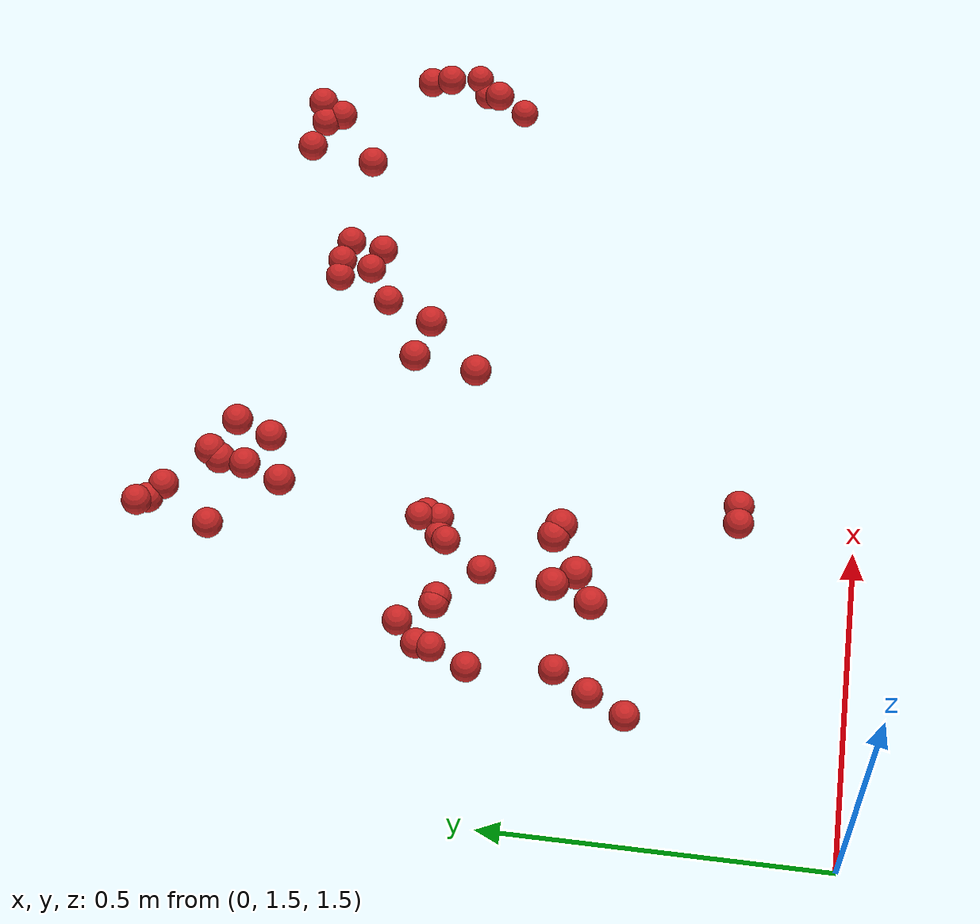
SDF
<sdf version="1.4">
 <model name="fruit_population">
  <static>true</static>
  <link name="fruit_6">
   <pose>0.9286271173134569 2.2731551884942847 1.7716973022270308 0 0 0</pose>
   <collision name="fruit_collision_6"><geometry><sphere><radius>0.022</radius></sphere></geometry></collision>
   <visual name="visual">
    <geometry><sphere><radius>0.022</radius></sphere></geometry>
    <material><script><name>Gazebo/Red</name></script></material>
   </visual>
   <inertial>
    <mass>0.05</mass>
    <inertia>
     <ixx>9.679999999999999e-06</ixx>
     <ixy>0.0</ixy>
     <ixz>0.0</ixz>
     <iyy>9.679999999999999e-06</iyy>
     <iyz>0.0</iyz>
     <izz>9.679999999999999e-06</izz>
    </inertia>
   </inertial>
   <sensor name="fruit_contact_6" type="contact">
    <plugin name="contact_plugin_6" filename="libcontact_plugin.so"/>
    <contact><collision>fruit_collision_6</collision><topic>fruit_contact_topic_6</topic></contact>
   </sensor>
  </link>
  <link name="fruit_22">
   <pose>0.2126457647800521 2.0402052789576874 1.5731759581158526 0 0 0</pose>
   <collision name="fruit_collision_22"><geometry><sphere><radius>0.022</radius></sphere></geometry></collision>
   <visual name="visual">
    <geometry><sphere><radius>0.022</radius></sphere></geometry>
    <material><script><name>Gazebo/Red</name></script></material>
   </visual>
   <inertial>
    <mass>0.05</mass>
    <inertia>
     <ixx>9.679999999999999e-06</ixx>
     <ixy>0.0</ixy>
     <ixz>0.0</ixz>
     <iyy>9.679999999999999e-06</iyy>
     <iyz>0.0</iyz>
     <izz>9.679999999999999e-06</izz>
    </inertia>
   </inertial>
   <sensor name="fruit_contact_22" type="contact">
    <plugin name="contact_plugin_22" filename="libcontact_plugin.so"/>
    <contact><collision>fruit_collision_22</collision><topic>fruit_contact_topic_22</topic></contact>
   </sensor>
  </link>
  <link name="fruit_24">
   <pose>0.3729716433108981 2.319319492841794 1.7647763664933074 0 0 0</pose>
   <collision name="fruit_collision_24"><geometry><sphere><radius>0.022</radius></sphere></geometry></collision>
   <visual name="visual">
    <geometry><sphere><radius>0.022</radius></sphere></geometry>
    <material><script><name>Gazebo/Red</name></script></material>
   </visual>
   <inertial>
    <mass>0.05</mass>
    <inertia>
     <ixx>9.679999999999999e-06</ixx>
     <ixy>0.0</ixy>
     <ixz>0.0</ixz>
     <iyy>9.679999999999999e-06</iyy>
     <iyz>0.0</iyz>
     <izz>9.679999999999999e-06</izz>
    </inertia>
   </inertial>
   <sensor name="fruit_contact_24" type="contact">
    <plugin name="contact_plugin_24" filename="libcontact_plugin.so"/>
    <contact><collision>fruit_collision_24</collision><topic>fruit_contact_topic_24</topic></contact>
   </sensor>
  </link>
  <link name="fruit_37">
   <pose>0.18105494105044112 1.8697597891935536 1.873254710022924 0 0 0</pose>
   <collision name="fruit_collision_37"><geometry><sphere><radius>0.022</radius></sphere></geometry></collision>
   <visual name="visual">
    <geometry><sphere><radius>0.022</radius></sphere></geometry>
    <material><script><name>Gazebo/Red</name></script></material>
   </visual>
   <inertial>
    <mass>0.05</mass>
    <inertia>
     <ixx>9.679999999999999e-06</ixx>
     <ixy>0.0</ixy>
     <ixz>0.0</ixz>
     <iyy>9.679999999999999e-06</iyy>
     <iyz>0.0</iyz>
     <izz>9.679999999999999e-06</izz>
    </inertia>
   </inertial>
   <sensor name="fruit_contact_37" type="contact">
    <plugin name="contact_plugin_37" filename="libcontact_plugin.so"/>
    <contact><collision>fruit_collision_37</collision><topic>fruit_contact_topic_37</topic></contact>
   </sensor>
  </link>
  <link name="fruit_41">
   <pose>0.34616691062136046 2.4255213528481683 1.6662251857479728 0 0 0</pose>
   <collision name="fruit_collision_41"><geometry><sphere><radius>0.022</radius></sphere></geometry></collision>
   <visual name="visual">
    <geometry><sphere><radius>0.022</radius></sphere></geometry>
    <material><script><name>Gazebo/Red</name></script></material>
   </visual>
   <inertial>
    <mass>0.05</mass>
    <inertia>
     <ixx>9.679999999999999e-06</ixx>
     <ixy>0.0</ixy>
     <ixz>0.0</ixz>
     <iyy>9.679999999999999e-06</iyy>
     <iyz>0.0</iyz>
     <izz>9.679999999999999e-06</izz>
    </inertia>
   </inertial>
   <sensor name="fruit_contact_41" type="contact">
    <plugin name="contact_plugin_41" filename="libcontact_plugin.so"/>
    <contact><collision>fruit_collision_41</collision><topic>fruit_contact_topic_41</topic></contact>
   </sensor>
  </link>
  <link name="fruit_51">
   <pose>0.15916652495618383 1.8108935284347418 1.5865598194130546 0 0 0</pose>
   <collision name="fruit_collision_51"><geometry><sphere><radius>0.022</radius></sphere></geometry></collision>
   <visual name="visual">
    <geometry><sphere><radius>0.022</radius></sphere></geometry>
    <material><script><name>Gazebo/Red</name></script></material>
   </visual>
   <inertial>
    <mass>0.05</mass>
    <inertia>
     <ixx>9.679999999999999e-06</ixx>
     <ixy>0.0</ixy>
     <ixz>0.0</ixz>
     <iyy>9.679999999999999e-06</iyy>
     <iyz>0.0</iyz>
     <izz>9.679999999999999e-06</izz>
    </inertia>
   </inertial>
   <sensor name="fruit_contact_51" type="contact">
    <plugin name="contact_plugin_51" filename="libcontact_plugin.so"/>
    <contact><collision>fruit_collision_51</collision><topic>fruit_contact_topic_51</topic></contact>
   </sensor>
  </link>
  <link name="fruit_64">
   <pose>1.2372214454494967 2.079222524804831 1.5345261858143295 0 0 0</pose>
   <collision name="fruit_collision_64"><geometry><sphere><radius>0.022</radius></sphere></geometry></collision>
   <visual name="visual">
    <geometry><sphere><radius>0.022</radius></sphere></geometry>
    <material><script><name>Gazebo/Red</name></script></material>
   </visual>
   <inertial>
    <mass>0.05</mass>
    <inertia>
     <ixx>9.679999999999999e-06</ixx>
     <ixy>0.0</ixy>
     <ixz>0.0</ixz>
     <iyy>9.679999999999999e-06</iyy>
     <iyz>0.0</iyz>
     <izz>9.679999999999999e-06</izz>
    </inertia>
   </inertial>
   <sensor name="fruit_contact_64" type="contact">
    <plugin name="contact_plugin_64" filename="libcontact_plugin.so"/>
    <contact><collision>fruit_collision_64</collision><topic>fruit_contact_topic_64</topic></contact>
   </sensor>
  </link>
  <link name="fruit_77">
   <pose>0.41454153954116324 2.0446920369989563 1.4855597208527829 0 0 0</pose>
   <collision name="fruit_collision_77"><geometry><sphere><radius>0.022</radius></sphere></geometry></collision>
   <visual name="visual">
    <geometry><sphere><radius>0.022</radius></sphere></geometry>
    <material><script><name>Gazebo/Red</name></script></material>
   </visual>
   <inertial>
    <mass>0.05</mass>
    <inertia>
     <ixx>9.679999999999999e-06</ixx>
     <ixy>0.0</ixy>
     <ixz>0.0</ixz>
     <iyy>9.679999999999999e-06</iyy>
     <iyz>0.0</iyz>
     <izz>9.679999999999999e-06</izz>
    </inertia>
   </inertial>
   <sensor name="fruit_contact_77" type="contact">
    <plugin name="contact_plugin_77" filename="libcontact_plugin.so"/>
    <contact><collision>fruit_collision_77</collision><topic>fruit_contact_topic_77</topic></contact>
   </sensor>
  </link>
  <link name="fruit_92">
   <pose>1.0710023496162049 2.099839104788794 1.7794484445738763 0 0 0</pose>
   <collision name="fruit_collision_92"><geometry><sphere><radius>0.022</radius></sphere></geometry></collision>
   <visual name="visual">
    <geometry><sphere><radius>0.022</radius></sphere></geometry>
    <material><script><name>Gazebo/Red</name></script></material>
   </visual>
   <inertial>
    <mass>0.05</mass>
    <inertia>
     <ixx>9.679999999999999e-06</ixx>
     <ixy>0.0</ixy>
     <ixz>0.0</ixz>
     <iyy>9.679999999999999e-06</iyy>
     <iyz>0.0</iyz>
     <izz>9.679999999999999e-06</izz>
    </inertia>
   </inertial>
   <sensor name="fruit_contact_92" type="contact">
    <plugin name="contact_plugin_92" filename="libcontact_plugin.so"/>
    <contact><collision>fruit_collision_92</collision><topic>fruit_contact_topic_92</topic></contact>
   </sensor>
  </link>
  <link name="fruit_140">
   <pose>0.5604169913502984 2.0693620066215637 1.80310417239114 0 0 0</pose>
   <collision name="fruit_collision_140"><geometry><sphere><radius>0.022</radius></sphere></geometry></collision>
   <visual name="visual">
    <geometry><sphere><radius>0.022</radius></sphere></geometry>
    <material><script><name>Gazebo/Red</name></script></material>
   </visual>
   <inertial>
    <mass>0.05</mass>
    <inertia>
     <ixx>9.679999999999999e-06</ixx>
     <ixy>0.0</ixy>
     <ixz>0.0</ixz>
     <iyy>9.679999999999999e-06</iyy>
     <iyz>0.0</iyz>
     <izz>9.679999999999999e-06</izz>
    </inertia>
   </inertial>
   <sensor name="fruit_contact_140" type="contact">
    <plugin name="contact_plugin_140" filename="libcontact_plugin.so"/>
    <contact><collision>fruit_collision_140</collision><topic>fruit_contact_topic_140</topic></contact>
   </sensor>
  </link>
  <link name="fruit_144">
   <pose>0.7597470956673927 2.228940727399983 1.6582708883677995 0 0 0</pose>
   <collision name="fruit_collision_144"><geometry><sphere><radius>0.022</radius></sphere></geometry></collision>
   <visual name="visual">
    <geometry><sphere><radius>0.022</radius></sphere></geometry>
    <material><script><name>Gazebo/Red</name></script></material>
   </visual>
   <inertial>
    <mass>0.05</mass>
    <inertia>
     <ixx>9.679999999999999e-06</ixx>
     <ixy>0.0</ixy>
     <ixz>0.0</ixz>
     <iyy>9.679999999999999e-06</iyy>
     <iyz>0.0</iyz>
     <izz>9.679999999999999e-06</izz>
    </inertia>
   </inertial>
   <sensor name="fruit_contact_144" type="contact">
    <plugin name="contact_plugin_144" filename="libcontact_plugin.so"/>
    <contact><collision>fruit_collision_144</collision><topic>fruit_contact_topic_144</topic></contact>
   </sensor>
  </link>
  <link name="fruit_187">
   <pose>1.0975690996132863 2.2067646426979888 1.7634826426656218 0 0 0</pose>
   <collision name="fruit_collision_187"><geometry><sphere><radius>0.022</radius></sphere></geometry></collision>
   <visual name="visual">
    <geometry><sphere><radius>0.022</radius></sphere></geometry>
    <material><script><name>Gazebo/Red</name></script></material>
   </visual>
   <inertial>
    <mass>0.05</mass>
    <inertia>
     <ixx>9.679999999999999e-06</ixx>
     <ixy>0.0</ixy>
     <ixz>0.0</ixz>
     <iyy>9.679999999999999e-06</iyy>
     <iyz>0.0</iyz>
     <izz>9.679999999999999e-06</izz>
    </inertia>
   </inertial>
   <sensor name="fruit_contact_187" type="contact">
    <plugin name="contact_plugin_187" filename="libcontact_plugin.so"/>
    <contact><collision>fruit_collision_187</collision><topic>fruit_contact_topic_187</topic></contact>
   </sensor>
  </link>
  <link name="fruit_191">
   <pose>1.0080222966381955 2.35763221755503 1.7565972930393607 0 0 0</pose>
   <collision name="fruit_collision_191"><geometry><sphere><radius>0.022</radius></sphere></geometry></collision>
   <visual name="visual">
    <geometry><sphere><radius>0.022</radius></sphere></geometry>
    <material><script><name>Gazebo/Red</name></script></material>
   </visual>
   <inertial>
    <mass>0.05</mass>
    <inertia>
     <ixx>9.679999999999999e-06</ixx>
     <ixy>0.0</ixy>
     <ixz>0.0</ixz>
     <iyy>9.679999999999999e-06</iyy>
     <iyz>0.0</iyz>
     <izz>9.679999999999999e-06</izz>
    </inertia>
   </inertial>
   <sensor name="fruit_contact_191" type="contact">
    <plugin name="contact_plugin_191" filename="libcontact_plugin.so"/>
    <contact><collision>fruit_collision_191</collision><topic>fruit_contact_topic_191</topic></contact>
   </sensor>
  </link>
  <link name="fruit_222">
   <pose>1.0930317047623366 2.176346932051886 1.7793904427415657 0 0 0</pose>
   <collision name="fruit_collision_222"><geometry><sphere><radius>0.022</radius></sphere></geometry></collision>
   <visual name="visual">
    <geometry><sphere><radius>0.022</radius></sphere></geometry>
    <material><script><name>Gazebo/Red</name></script></material>
   </visual>
   <inertial>
    <mass>0.05</mass>
    <inertia>
     <ixx>9.679999999999999e-06</ixx>
     <ixy>0.0</ixy>
     <ixz>0.0</ixz>
     <iyy>9.679999999999999e-06</iyy>
     <iyz>0.0</iyz>
     <izz>9.679999999999999e-06</izz>
    </inertia>
   </inertial>
   <sensor name="fruit_contact_222" type="contact">
    <plugin name="contact_plugin_222" filename="libcontact_plugin.so"/>
    <contact><collision>fruit_collision_222</collision><topic>fruit_contact_topic_222</topic></contact>
   </sensor>
  </link>
  <link name="fruit_239">
   <pose>0.3705423444139603 2.532829878314412 1.6660277850355836 0 0 0</pose>
   <collision name="fruit_collision_239"><geometry><sphere><radius>0.022</radius></sphere></geometry></collision>
   <visual name="visual">
    <geometry><sphere><radius>0.022</radius></sphere></geometry>
    <material><script><name>Gazebo/Red</name></script></material>
   </visual>
   <inertial>
    <mass>0.05</mass>
    <inertia>
     <ixx>9.679999999999999e-06</ixx>
     <ixy>0.0</ixy>
     <ixz>0.0</ixz>
     <iyy>9.679999999999999e-06</iyy>
     <iyz>0.0</iyz>
     <izz>9.679999999999999e-06</izz>
    </inertia>
   </inertial>
   <sensor name="fruit_contact_239" type="contact">
    <plugin name="contact_plugin_239" filename="libcontact_plugin.so"/>
    <contact><collision>fruit_collision_239</collision><topic>fruit_contact_topic_239</topic></contact>
   </sensor>
  </link>
  <link name="fruit_251">
   <pose>0.43851870704911994 1.6797414119379956 1.6669475574767638 0 0 0</pose>
   <collision name="fruit_collision_251"><geometry><sphere><radius>0.022</radius></sphere></geometry></collision>
   <visual name="visual">
    <geometry><sphere><radius>0.022</radius></sphere></geometry>
    <material><script><name>Gazebo/Red</name></script></material>
   </visual>
   <inertial>
    <mass>0.05</mass>
    <inertia>
     <ixx>9.679999999999999e-06</ixx>
     <ixy>0.0</ixy>
     <ixz>0.0</ixz>
     <iyy>9.679999999999999e-06</iyy>
     <iyz>0.0</iyz>
     <izz>9.679999999999999e-06</izz>
    </inertia>
   </inertial>
   <sensor name="fruit_contact_251" type="contact">
    <plugin name="contact_plugin_251" filename="libcontact_plugin.so"/>
    <contact><collision>fruit_collision_251</collision><topic>fruit_contact_topic_251</topic></contact>
   </sensor>
  </link>
  <link name="fruit_254">
   <pose>0.3828547564513202 2.5203369219246277 1.6534806606618628 0 0 0</pose>
   <collision name="fruit_collision_254"><geometry><sphere><radius>0.022</radius></sphere></geometry></collision>
   <visual name="visual">
    <geometry><sphere><radius>0.022</radius></sphere></geometry>
    <material><script><name>Gazebo/Red</name></script></material>
   </visual>
   <inertial>
    <mass>0.05</mass>
    <inertia>
     <ixx>9.679999999999999e-06</ixx>
     <ixy>0.0</ixy>
     <ixz>0.0</ixz>
     <iyy>9.679999999999999e-06</iyy>
     <iyz>0.0</iyz>
     <izz>9.679999999999999e-06</izz>
    </inertia>
   </inertial>
   <sensor name="fruit_contact_254" type="contact">
    <plugin name="contact_plugin_254" filename="libcontact_plugin.so"/>
    <contact><collision>fruit_collision_254</collision><topic>fruit_contact_topic_254</topic></contact>
   </sensor>
  </link>
  <link name="fruit_275">
   <pose>0.40687078191338955 2.4108697090877076 1.747769291683837 0 0 0</pose>
   <collision name="fruit_collision_275"><geometry><sphere><radius>0.022</radius></sphere></geometry></collision>
   <visual name="visual">
    <geometry><sphere><radius>0.022</radius></sphere></geometry>
    <material><script><name>Gazebo/Red</name></script></material>
   </visual>
   <inertial>
    <mass>0.05</mass>
    <inertia>
     <ixx>9.679999999999999e-06</ixx>
     <ixy>0.0</ixy>
     <ixz>0.0</ixz>
     <iyy>9.679999999999999e-06</iyy>
     <iyz>0.0</iyz>
     <izz>9.679999999999999e-06</izz>
    </inertia>
   </inertial>
   <sensor name="fruit_contact_275" type="contact">
    <plugin name="contact_plugin_275" filename="libcontact_plugin.so"/>
    <contact><collision>fruit_collision_275</collision><topic>fruit_contact_topic_275</topic></contact>
   </sensor>
  </link>
  <link name="fruit_295">
   <pose>0.5849100100280233 2.1596716759296153 1.7865010461987834 0 0 0</pose>
   <collision name="fruit_collision_295"><geometry><sphere><radius>0.022</radius></sphere></geometry></collision>
   <visual name="visual">
    <geometry><sphere><radius>0.022</radius></sphere></geometry>
    <material><script><name>Gazebo/Red</name></script></material>
   </visual>
   <inertial>
    <mass>0.05</mass>
    <inertia>
     <ixx>9.679999999999999e-06</ixx>
     <ixy>0.0</ixy>
     <ixz>0.0</ixz>
     <iyy>9.679999999999999e-06</iyy>
     <iyz>0.0</iyz>
     <izz>9.679999999999999e-06</izz>
    </inertia>
   </inertial>
   <sensor name="fruit_contact_295" type="contact">
    <plugin name="contact_plugin_295" filename="libcontact_plugin.so"/>
    <contact><collision>fruit_collision_295</collision><topic>fruit_contact_topic_295</topic></contact>
   </sensor>
  </link>
  <link name="fruit_305">
   <pose>0.2906460262690709 1.9200071591452244 1.872805201730352 0 0 0</pose>
   <collision name="fruit_collision_305"><geometry><sphere><radius>0.022</radius></sphere></geometry></collision>
   <visual name="visual">
    <geometry><sphere><radius>0.022</radius></sphere></geometry>
    <material><script><name>Gazebo/Red</name></script></material>
   </visual>
   <inertial>
    <mass>0.05</mass>
    <inertia>
     <ixx>9.679999999999999e-06</ixx>
     <ixy>0.0</ixy>
     <ixz>0.0</ixz>
     <iyy>9.679999999999999e-06</iyy>
     <iyz>0.0</iyz>
     <izz>9.679999999999999e-06</izz>
    </inertia>
   </inertial>
   <sensor name="fruit_contact_305" type="contact">
    <plugin name="contact_plugin_305" filename="libcontact_plugin.so"/>
    <contact><collision>fruit_collision_305</collision><topic>fruit_contact_topic_305</topic></contact>
   </sensor>
  </link>
  <link name="fruit_319">
   <pose>1.020992120738359 2.3346417149626313 1.758769017089317 0 0 0</pose>
   <collision name="fruit_collision_319"><geometry><sphere><radius>0.022</radius></sphere></geometry></collision>
   <visual name="visual">
    <geometry><sphere><radius>0.022</radius></sphere></geometry>
    <material><script><name>Gazebo/Red</name></script></material>
   </visual>
   <inertial>
    <mass>0.05</mass>
    <inertia>
     <ixx>9.679999999999999e-06</ixx>
     <ixy>0.0</ixy>
     <ixz>0.0</ixz>
     <iyy>9.679999999999999e-06</iyy>
     <iyz>0.0</iyz>
     <izz>9.679999999999999e-06</izz>
    </inertia>
   </inertial>
   <sensor name="fruit_contact_319" type="contact">
    <plugin name="contact_plugin_319" filename="libcontact_plugin.so"/>
    <contact><collision>fruit_collision_319</collision><topic>fruit_contact_topic_319</topic></contact>
   </sensor>
  </link>
  <link name="fruit_332">
   <pose>0.27434474007666626 2.146942440487473 1.5710921663481103 0 0 0</pose>
   <collision name="fruit_collision_332"><geometry><sphere><radius>0.022</radius></sphere></geometry></collision>
   <visual name="visual">
    <geometry><sphere><radius>0.022</radius></sphere></geometry>
    <material><script><name>Gazebo/Red</name></script></material>
   </visual>
   <inertial>
    <mass>0.05</mass>
    <inertia>
     <ixx>9.679999999999999e-06</ixx>
     <ixy>0.0</ixy>
     <ixz>0.0</ixz>
     <iyy>9.679999999999999e-06</iyy>
     <iyz>0.0</iyz>
     <izz>9.679999999999999e-06</izz>
    </inertia>
   </inertial>
   <sensor name="fruit_contact_332" type="contact">
    <plugin name="contact_plugin_332" filename="libcontact_plugin.so"/>
    <contact><collision>fruit_collision_332</collision><topic>fruit_contact_topic_332</topic></contact>
   </sensor>
  </link>
  <link name="fruit_355">
   <pose>0.4731632302541494 2.1163147826311146 1.4687762942453066 0 0 0</pose>
   <collision name="fruit_collision_355"><geometry><sphere><radius>0.022</radius></sphere></geometry></collision>
   <visual name="visual">
    <geometry><sphere><radius>0.022</radius></sphere></geometry>
    <material><script><name>Gazebo/Red</name></script></material>
   </visual>
   <inertial>
    <mass>0.05</mass>
    <inertia>
     <ixx>9.679999999999999e-06</ixx>
     <ixy>0.0</ixy>
     <ixz>0.0</ixz>
     <iyy>9.679999999999999e-06</iyy>
     <iyz>0.0</iyz>
     <izz>9.679999999999999e-06</izz>
    </inertia>
   </inertial>
   <sensor name="fruit_contact_355" type="contact">
    <plugin name="contact_plugin_355" filename="libcontact_plugin.so"/>
    <contact><collision>fruit_collision_355</collision><topic>fruit_contact_topic_355</topic></contact>
   </sensor>
  </link>
  <link name="fruit_384">
   <pose>0.40015497740405936 2.374065873379104 1.7523514993142801 0 0 0</pose>
   <collision name="fruit_collision_384"><geometry><sphere><radius>0.022</radius></sphere></geometry></collision>
   <visual name="visual">
    <geometry><sphere><radius>0.022</radius></sphere></geometry>
    <material><script><name>Gazebo/Red</name></script></material>
   </visual>
   <inertial>
    <mass>0.05</mass>
    <inertia>
     <ixx>9.679999999999999e-06</ixx>
     <ixy>0.0</ixy>
     <ixz>0.0</ixz>
     <iyy>9.679999999999999e-06</iyy>
     <iyz>0.0</iyz>
     <izz>9.679999999999999e-06</izz>
    </inertia>
   </inertial>
   <sensor name="fruit_contact_384" type="contact">
    <plugin name="contact_plugin_384" filename="libcontact_plugin.so"/>
    <contact><collision>fruit_collision_384</collision><topic>fruit_contact_topic_384</topic></contact>
   </sensor>
  </link>
  <link name="fruit_406">
   <pose>0.18915486752613198 1.8654068260970285 1.5826288856259545 0 0 0</pose>
   <collision name="fruit_collision_406"><geometry><sphere><radius>0.022</radius></sphere></geometry></collision>
   <visual name="visual">
    <geometry><sphere><radius>0.022</radius></sphere></geometry>
    <material><script><name>Gazebo/Red</name></script></material>
   </visual>
   <inertial>
    <mass>0.05</mass>
    <inertia>
     <ixx>9.679999999999999e-06</ixx>
     <ixy>0.0</ixy>
     <ixz>0.0</ixz>
     <iyy>9.679999999999999e-06</iyy>
     <iyz>0.0</iyz>
     <izz>9.679999999999999e-06</izz>
    </inertia>
   </inertial>
   <sensor name="fruit_contact_406" type="contact">
    <plugin name="contact_plugin_406" filename="libcontact_plugin.so"/>
    <contact><collision>fruit_collision_406</collision><topic>fruit_contact_topic_406</topic></contact>
   </sensor>
  </link>
  <link name="fruit_477">
   <pose>0.2037296065783055 1.9218098099742973 1.870531206124399 0 0 0</pose>
   <collision name="fruit_collision_477"><geometry><sphere><radius>0.022</radius></sphere></geometry></collision>
   <visual name="visual">
    <geometry><sphere><radius>0.022</radius></sphere></geometry>
    <material><script><name>Gazebo/Red</name></script></material>
   </visual>
   <inertial>
    <mass>0.05</mass>
    <inertia>
     <ixx>9.679999999999999e-06</ixx>
     <ixy>0.0</ixy>
     <ixz>0.0</ixz>
     <iyy>9.679999999999999e-06</iyy>
     <iyz>0.0</iyz>
     <izz>9.679999999999999e-06</izz>
    </inertia>
   </inertial>
   <sensor name="fruit_contact_477" type="contact">
    <plugin name="contact_plugin_477" filename="libcontact_plugin.so"/>
    <contact><collision>fruit_collision_477</collision><topic>fruit_contact_topic_477</topic></contact>
   </sensor>
  </link>
  <link name="fruit_500">
   <pose>1.2825781043513076 2.145381176047593 1.5151192990448774 0 0 0</pose>
   <collision name="fruit_collision_500"><geometry><sphere><radius>0.022</radius></sphere></geometry></collision>
   <visual name="visual">
    <geometry><sphere><radius>0.022</radius></sphere></geometry>
    <material><script><name>Gazebo/Red</name></script></material>
   </visual>
   <inertial>
    <mass>0.05</mass>
    <inertia>
     <ixx>9.679999999999999e-06</ixx>
     <ixy>0.0</ixy>
     <ixz>0.0</ixz>
     <iyy>9.679999999999999e-06</iyy>
     <iyz>0.0</iyz>
     <izz>9.679999999999999e-06</izz>
    </inertia>
   </inertial>
   <sensor name="fruit_contact_500" type="contact">
    <plugin name="contact_plugin_500" filename="libcontact_plugin.so"/>
    <contact><collision>fruit_collision_500</collision><topic>fruit_contact_topic_500</topic></contact>
   </sensor>
  </link>
  <link name="fruit_506">
   <pose>0.22068799400985956 1.9165911673902805 1.5797477715686385 0 0 0</pose>
   <collision name="fruit_collision_506"><geometry><sphere><radius>0.022</radius></sphere></geometry></collision>
   <visual name="visual">
    <geometry><sphere><radius>0.022</radius></sphere></geometry>
    <material><script><name>Gazebo/Red</name></script></material>
   </visual>
   <inertial>
    <mass>0.05</mass>
    <inertia>
     <ixx>9.679999999999999e-06</ixx>
     <ixy>0.0</ixy>
     <ixz>0.0</ixz>
     <iyy>9.679999999999999e-06</iyy>
     <iyz>0.0</iyz>
     <izz>9.679999999999999e-06</izz>
    </inertia>
   </inertial>
   <sensor name="fruit_contact_506" type="contact">
    <plugin name="contact_plugin_506" filename="libcontact_plugin.so"/>
    <contact><collision>fruit_collision_506</collision><topic>fruit_contact_topic_506</topic></contact>
   </sensor>
  </link>
  <link name="fruit_510">
   <pose>0.8143532822385943 2.26305887311379 1.6577533732067278 0 0 0</pose>
   <collision name="fruit_collision_510"><geometry><sphere><radius>0.022</radius></sphere></geometry></collision>
   <visual name="visual">
    <geometry><sphere><radius>0.022</radius></sphere></geometry>
    <material><script><name>Gazebo/Red</name></script></material>
   </visual>
   <inertial>
    <mass>0.05</mass>
    <inertia>
     <ixx>9.679999999999999e-06</ixx>
     <ixy>0.0</ixy>
     <ixz>0.0</ixz>
     <iyy>9.679999999999999e-06</iyy>
     <iyz>0.0</iyz>
     <izz>9.679999999999999e-06</izz>
    </inertia>
   </inertial>
   <sensor name="fruit_contact_510" type="contact">
    <plugin name="contact_plugin_510" filename="libcontact_plugin.so"/>
    <contact><collision>fruit_collision_510</collision><topic>fruit_contact_topic_510</topic></contact>
   </sensor>
  </link>
  <link name="fruit_512">
   <pose>0.5104072362681017 2.1396476697106093 1.4697013164951989 0 0 0</pose>
   <collision name="fruit_collision_512"><geometry><sphere><radius>0.022</radius></sphere></geometry></collision>
   <visual name="visual">
    <geometry><sphere><radius>0.022</radius></sphere></geometry>
    <material><script><name>Gazebo/Red</name></script></material>
   </visual>
   <inertial>
    <mass>0.05</mass>
    <inertia>
     <ixx>9.679999999999999e-06</ixx>
     <ixy>0.0</ixy>
     <ixz>0.0</ixz>
     <iyy>9.679999999999999e-06</iyy>
     <iyz>0.0</iyz>
     <izz>9.679999999999999e-06</izz>
    </inertia>
   </inertial>
   <sensor name="fruit_contact_512" type="contact">
    <plugin name="contact_plugin_512" filename="libcontact_plugin.so"/>
    <contact><collision>fruit_collision_512</collision><topic>fruit_contact_topic_512</topic></contact>
   </sensor>
  </link>
  <link name="fruit_530">
   <pose>1.3014351101905821 2.160973151834373 1.5325350712494894 0 0 0</pose>
   <collision name="fruit_collision_530"><geometry><sphere><radius>0.022</radius></sphere></geometry></collision>
   <visual name="visual">
    <geometry><sphere><radius>0.022</radius></sphere></geometry>
    <material><script><name>Gazebo/Red</name></script></material>
   </visual>
   <inertial>
    <mass>0.05</mass>
    <inertia>
     <ixx>9.679999999999999e-06</ixx>
     <ixy>0.0</ixy>
     <ixz>0.0</ixz>
     <iyy>9.679999999999999e-06</iyy>
     <iyz>0.0</iyz>
     <izz>9.679999999999999e-06</izz>
    </inertia>
   </inertial>
   <sensor name="fruit_contact_530" type="contact">
    <plugin name="contact_plugin_530" filename="libcontact_plugin.so"/>
    <contact><collision>fruit_collision_530</collision><topic>fruit_contact_topic_530</topic></contact>
   </sensor>
  </link>
  <link name="fruit_537">
   <pose>0.8031288174601846 2.3099669219110197 1.6452295664567291 0 0 0</pose>
   <collision name="fruit_collision_537"><geometry><sphere><radius>0.022</radius></sphere></geometry></collision>
   <visual name="visual">
    <geometry><sphere><radius>0.022</radius></sphere></geometry>
    <material><script><name>Gazebo/Red</name></script></material>
   </visual>
   <inertial>
    <mass>0.05</mass>
    <inertia>
     <ixx>9.679999999999999e-06</ixx>
     <ixy>0.0</ixy>
     <ixz>0.0</ixz>
     <iyy>9.679999999999999e-06</iyy>
     <iyz>0.0</iyz>
     <izz>9.679999999999999e-06</izz>
    </inertia>
   </inertial>
   <sensor name="fruit_contact_537" type="contact">
    <plugin name="contact_plugin_537" filename="libcontact_plugin.so"/>
    <contact><collision>fruit_collision_537</collision><topic>fruit_contact_topic_537</topic></contact>
   </sensor>
  </link>
  <link name="fruit_587">
   <pose>0.4509643662739048 2.3460998811638665 1.7490744286556459 0 0 0</pose>
   <collision name="fruit_collision_587"><geometry><sphere><radius>0.022</radius></sphere></geometry></collision>
   <visual name="visual">
    <geometry><sphere><radius>0.022</radius></sphere></geometry>
    <material><script><name>Gazebo/Red</name></script></material>
   </visual>
   <inertial>
    <mass>0.05</mass>
    <inertia>
     <ixx>9.679999999999999e-06</ixx>
     <ixy>0.0</ixy>
     <ixz>0.0</ixz>
     <iyy>9.679999999999999e-06</iyy>
     <iyz>0.0</iyz>
     <izz>9.679999999999999e-06</izz>
    </inertia>
   </inertial>
   <sensor name="fruit_contact_587" type="contact">
    <plugin name="contact_plugin_587" filename="libcontact_plugin.so"/>
    <contact><collision>fruit_collision_587</collision><topic>fruit_contact_topic_587</topic></contact>
   </sensor>
  </link>
  <link name="fruit_615">
   <pose>0.8647788748125541 2.301467264405912 1.6516727977786159 0 0 0</pose>
   <collision name="fruit_collision_615"><geometry><sphere><radius>0.022</radius></sphere></geometry></collision>
   <visual name="visual">
    <geometry><sphere><radius>0.022</radius></sphere></geometry>
    <material><script><name>Gazebo/Red</name></script></material>
   </visual>
   <inertial>
    <mass>0.05</mass>
    <inertia>
     <ixx>9.679999999999999e-06</ixx>
     <ixy>0.0</ixy>
     <ixz>0.0</ixz>
     <iyy>9.679999999999999e-06</iyy>
     <iyz>0.0</iyz>
     <izz>9.679999999999999e-06</izz>
    </inertia>
   </inertial>
   <sensor name="fruit_contact_615" type="contact">
    <plugin name="contact_plugin_615" filename="libcontact_plugin.so"/>
    <contact><collision>fruit_collision_615</collision><topic>fruit_contact_topic_615</topic></contact>
   </sensor>
  </link>
  <link name="fruit_624">
   <pose>0.4679798491711361 1.6807746356956568 1.664766876376536 0 0 0</pose>
   <collision name="fruit_collision_624"><geometry><sphere><radius>0.022</radius></sphere></geometry></collision>
   <visual name="visual">
    <geometry><sphere><radius>0.022</radius></sphere></geometry>
    <material><script><name>Gazebo/Red</name></script></material>
   </visual>
   <inertial>
    <mass>0.05</mass>
    <inertia>
     <ixx>9.679999999999999e-06</ixx>
     <ixy>0.0</ixy>
     <ixz>0.0</ixz>
     <iyy>9.679999999999999e-06</iyy>
     <iyz>0.0</iyz>
     <izz>9.679999999999999e-06</izz>
    </inertia>
   </inertial>
   <sensor name="fruit_contact_624" type="contact">
    <plugin name="contact_plugin_624" filename="libcontact_plugin.so"/>
    <contact><collision>fruit_collision_624</collision><topic>fruit_contact_topic_624</topic></contact>
   </sensor>
  </link>
  <link name="fruit_631">
   <pose>0.9563101566317597 2.369663365948371 1.7600980665548824 0 0 0</pose>
   <collision name="fruit_collision_631"><geometry><sphere><radius>0.022</radius></sphere></geometry></collision>
   <visual name="visual">
    <geometry><sphere><radius>0.022</radius></sphere></geometry>
    <material><script><name>Gazebo/Red</name></script></material>
   </visual>
   <inertial>
    <mass>0.05</mass>
    <inertia>
     <ixx>9.679999999999999e-06</ixx>
     <ixy>0.0</ixy>
     <ixz>0.0</ixz>
     <iyy>9.679999999999999e-06</iyy>
     <iyz>0.0</iyz>
     <izz>9.679999999999999e-06</izz>
    </inertia>
   </inertial>
   <sensor name="fruit_contact_631" type="contact">
    <plugin name="contact_plugin_631" filename="libcontact_plugin.so"/>
    <contact><collision>fruit_collision_631</collision><topic>fruit_contact_topic_631</topic></contact>
   </sensor>
  </link>
  <link name="fruit_636">
   <pose>0.497288155751392 2.1490195660100238 1.479896280307714 0 0 0</pose>
   <collision name="fruit_collision_636"><geometry><sphere><radius>0.022</radius></sphere></geometry></collision>
   <visual name="visual">
    <geometry><sphere><radius>0.022</radius></sphere></geometry>
    <material><script><name>Gazebo/Red</name></script></material>
   </visual>
   <inertial>
    <mass>0.05</mass>
    <inertia>
     <ixx>9.679999999999999e-06</ixx>
     <ixy>0.0</ixy>
     <ixz>0.0</ixz>
     <iyy>9.679999999999999e-06</iyy>
     <iyz>0.0</iyz>
     <izz>9.679999999999999e-06</izz>
    </inertia>
   </inertial>
   <sensor name="fruit_contact_636" type="contact">
    <plugin name="contact_plugin_636" filename="libcontact_plugin.so"/>
    <contact><collision>fruit_collision_636</collision><topic>fruit_contact_topic_636</topic></contact>
   </sensor>
  </link>
  <link name="fruit_638">
   <pose>0.27436011676382877 1.9278007335879144 1.870865729828995 0 0 0</pose>
   <collision name="fruit_collision_638"><geometry><sphere><radius>0.022</radius></sphere></geometry></collision>
   <visual name="visual">
    <geometry><sphere><radius>0.022</radius></sphere></geometry>
    <material><script><name>Gazebo/Red</name></script></material>
   </visual>
   <inertial>
    <mass>0.05</mass>
    <inertia>
     <ixx>9.679999999999999e-06</ixx>
     <ixy>0.0</ixy>
     <ixz>0.0</ixz>
     <iyy>9.679999999999999e-06</iyy>
     <iyz>0.0</iyz>
     <izz>9.679999999999999e-06</izz>
    </inertia>
   </inertial>
   <sensor name="fruit_contact_638" type="contact">
    <plugin name="contact_plugin_638" filename="libcontact_plugin.so"/>
    <contact><collision>fruit_collision_638</collision><topic>fruit_contact_topic_638</topic></contact>
   </sensor>
  </link>
  <link name="fruit_640">
   <pose>0.6436070602880152 2.1444767960410602 1.7891020896074779 0 0 0</pose>
   <collision name="fruit_collision_640"><geometry><sphere><radius>0.022</radius></sphere></geometry></collision>
   <visual name="visual">
    <geometry><sphere><radius>0.022</radius></sphere></geometry>
    <material><script><name>Gazebo/Red</name></script></material>
   </visual>
   <inertial>
    <mass>0.05</mass>
    <inertia>
     <ixx>9.679999999999999e-06</ixx>
     <ixy>0.0</ixy>
     <ixz>0.0</ixz>
     <iyy>9.679999999999999e-06</iyy>
     <iyz>0.0</iyz>
     <izz>9.679999999999999e-06</izz>
    </inertia>
   </inertial>
   <sensor name="fruit_contact_640" type="contact">
    <plugin name="contact_plugin_640" filename="libcontact_plugin.so"/>
    <contact><collision>fruit_collision_640</collision><topic>fruit_contact_topic_640</topic></contact>
   </sensor>
  </link>
  <link name="fruit_650">
   <pose>0.24574756246943236 2.116658902217522 1.5624561838741051 0 0 0</pose>
   <collision name="fruit_collision_650"><geometry><sphere><radius>0.022</radius></sphere></geometry></collision>
   <visual name="visual">
    <geometry><sphere><radius>0.022</radius></sphere></geometry>
    <material><script><name>Gazebo/Red</name></script></material>
   </visual>
   <inertial>
    <mass>0.05</mass>
    <inertia>
     <ixx>9.679999999999999e-06</ixx>
     <ixy>0.0</ixy>
     <ixz>0.0</ixz>
     <iyy>9.679999999999999e-06</iyy>
     <iyz>0.0</iyz>
     <izz>9.679999999999999e-06</izz>
    </inertia>
   </inertial>
   <sensor name="fruit_contact_650" type="contact">
    <plugin name="contact_plugin_650" filename="libcontact_plugin.so"/>
    <contact><collision>fruit_collision_650</collision><topic>fruit_contact_topic_650</topic></contact>
   </sensor>
  </link>
  <link name="fruit_654">
   <pose>0.5023775701658235 2.119701323611858 1.471967957467354 0 0 0</pose>
   <collision name="fruit_collision_654"><geometry><sphere><radius>0.022</radius></sphere></geometry></collision>
   <visual name="visual">
    <geometry><sphere><radius>0.022</radius></sphere></geometry>
    <material><script><name>Gazebo/Red</name></script></material>
   </visual>
   <inertial>
    <mass>0.05</mass>
    <inertia>
     <ixx>9.679999999999999e-06</ixx>
     <ixy>0.0</ixy>
     <ixz>0.0</ixz>
     <iyy>9.679999999999999e-06</iyy>
     <iyz>0.0</iyz>
     <izz>9.679999999999999e-06</izz>
    </inertia>
   </inertial>
   <sensor name="fruit_contact_654" type="contact">
    <plugin name="contact_plugin_654" filename="libcontact_plugin.so"/>
    <contact><collision>fruit_collision_654</collision><topic>fruit_contact_topic_654</topic></contact>
   </sensor>
  </link>
  <link name="fruit_671">
   <pose>1.0345259238938114 2.3658877930797555 1.7684063005705177 0 0 0</pose>
   <collision name="fruit_collision_671"><geometry><sphere><radius>0.022</radius></sphere></geometry></collision>
   <visual name="visual">
    <geometry><sphere><radius>0.022</radius></sphere></geometry>
    <material><script><name>Gazebo/Red</name></script></material>
   </visual>
   <inertial>
    <mass>0.05</mass>
    <inertia>
     <ixx>9.679999999999999e-06</ixx>
     <ixy>0.0</ixy>
     <ixz>0.0</ixz>
     <iyy>9.679999999999999e-06</iyy>
     <iyz>0.0</iyz>
     <izz>9.679999999999999e-06</izz>
    </inertia>
   </inertial>
   <sensor name="fruit_contact_671" type="contact">
    <plugin name="contact_plugin_671" filename="libcontact_plugin.so"/>
    <contact><collision>fruit_collision_671</collision><topic>fruit_contact_topic_671</topic></contact>
   </sensor>
  </link>
  <link name="fruit_683">
   <pose>0.4151211023178884 2.4250460747505027 1.7549111482394089 0 0 0</pose>
   <collision name="fruit_collision_683"><geometry><sphere><radius>0.022</radius></sphere></geometry></collision>
   <visual name="visual">
    <geometry><sphere><radius>0.022</radius></sphere></geometry>
    <material><script><name>Gazebo/Red</name></script></material>
   </visual>
   <inertial>
    <mass>0.05</mass>
    <inertia>
     <ixx>9.679999999999999e-06</ixx>
     <ixy>0.0</ixy>
     <ixz>0.0</ixz>
     <iyy>9.679999999999999e-06</iyy>
     <iyz>0.0</iyz>
     <izz>9.679999999999999e-06</izz>
    </inertia>
   </inertial>
   <sensor name="fruit_contact_683" type="contact">
    <plugin name="contact_plugin_683" filename="libcontact_plugin.so"/>
    <contact><collision>fruit_collision_683</collision><topic>fruit_contact_topic_683</topic></contact>
   </sensor>
  </link>
  <link name="fruit_720">
   <pose>0.31857934069804394 2.0967784183095626 1.5701673611115126 0 0 0</pose>
   <collision name="fruit_collision_720"><geometry><sphere><radius>0.022</radius></sphere></geometry></collision>
   <visual name="visual">
    <geometry><sphere><radius>0.022</radius></sphere></geometry>
    <material><script><name>Gazebo/Red</name></script></material>
   </visual>
   <inertial>
    <mass>0.05</mass>
    <inertia>
     <ixx>9.679999999999999e-06</ixx>
     <ixy>0.0</ixy>
     <ixz>0.0</ixz>
     <iyy>9.679999999999999e-06</iyy>
     <iyz>0.0</iyz>
     <izz>9.679999999999999e-06</izz>
    </inertia>
   </inertial>
   <sensor name="fruit_contact_720" type="contact">
    <plugin name="contact_plugin_720" filename="libcontact_plugin.so"/>
    <contact><collision>fruit_collision_720</collision><topic>fruit_contact_topic_720</topic></contact>
   </sensor>
  </link>
  <link name="fruit_732">
   <pose>0.22602566579264138 1.8936106469062972 1.8663582861784793 0 0 0</pose>
   <collision name="fruit_collision_732"><geometry><sphere><radius>0.022</radius></sphere></geometry></collision>
   <visual name="visual">
    <geometry><sphere><radius>0.022</radius></sphere></geometry>
    <material><script><name>Gazebo/Red</name></script></material>
   </visual>
   <inertial>
    <mass>0.05</mass>
    <inertia>
     <ixx>9.679999999999999e-06</ixx>
     <ixy>0.0</ixy>
     <ixz>0.0</ixz>
     <iyy>9.679999999999999e-06</iyy>
     <iyz>0.0</iyz>
     <izz>9.679999999999999e-06</izz>
    </inertia>
   </inertial>
   <sensor name="fruit_contact_732" type="contact">
    <plugin name="contact_plugin_732" filename="libcontact_plugin.so"/>
    <contact><collision>fruit_collision_732</collision><topic>fruit_contact_topic_732</topic></contact>
   </sensor>
  </link>
  <link name="fruit_738">
   <pose>0.45877310845430663 2.1041183729929687 1.4835307052810385 0 0 0</pose>
   <collision name="fruit_collision_738"><geometry><sphere><radius>0.022</radius></sphere></geometry></collision>
   <visual name="visual">
    <geometry><sphere><radius>0.022</radius></sphere></geometry>
    <material><script><name>Gazebo/Red</name></script></material>
   </visual>
   <inertial>
    <mass>0.05</mass>
    <inertia>
     <ixx>9.679999999999999e-06</ixx>
     <ixy>0.0</ixy>
     <ixz>0.0</ixz>
     <iyy>9.679999999999999e-06</iyy>
     <iyz>0.0</iyz>
     <izz>9.679999999999999e-06</izz>
    </inertia>
   </inertial>
   <sensor name="fruit_contact_738" type="contact">
    <plugin name="contact_plugin_738" filename="libcontact_plugin.so"/>
    <contact><collision>fruit_collision_738</collision><topic>fruit_contact_topic_738</topic></contact>
   </sensor>
  </link>
  <link name="fruit_748">
   <pose>0.8601712257422744 2.252165172379959 1.6446102427967393 0 0 0</pose>
   <collision name="fruit_collision_748"><geometry><sphere><radius>0.022</radius></sphere></geometry></collision>
   <visual name="visual">
    <geometry><sphere><radius>0.022</radius></sphere></geometry>
    <material><script><name>Gazebo/Red</name></script></material>
   </visual>
   <inertial>
    <mass>0.05</mass>
    <inertia>
     <ixx>9.679999999999999e-06</ixx>
     <ixy>0.0</ixy>
     <ixz>0.0</ixz>
     <iyy>9.679999999999999e-06</iyy>
     <iyz>0.0</iyz>
     <izz>9.679999999999999e-06</izz>
    </inertia>
   </inertial>
   <sensor name="fruit_contact_748" type="contact">
    <plugin name="contact_plugin_748" filename="libcontact_plugin.so"/>
    <contact><collision>fruit_collision_748</collision><topic>fruit_contact_topic_748</topic></contact>
   </sensor>
  </link>
  <link name="fruit_754">
   <pose>0.30780286895923625 2.098818744048964 1.5702801252481418 0 0 0</pose>
   <collision name="fruit_collision_754"><geometry><sphere><radius>0.022</radius></sphere></geometry></collision>
   <visual name="visual">
    <geometry><sphere><radius>0.022</radius></sphere></geometry>
    <material><script><name>Gazebo/Red</name></script></material>
   </visual>
   <inertial>
    <mass>0.05</mass>
    <inertia>
     <ixx>9.679999999999999e-06</ixx>
     <ixy>0.0</ixy>
     <ixz>0.0</ixz>
     <iyy>9.679999999999999e-06</iyy>
     <iyz>0.0</iyz>
     <izz>9.679999999999999e-06</izz>
    </inertia>
   </inertial>
   <sensor name="fruit_contact_754" type="contact">
    <plugin name="contact_plugin_754" filename="libcontact_plugin.so"/>
    <contact><collision>fruit_collision_754</collision><topic>fruit_contact_topic_754</topic></contact>
   </sensor>
  </link>
  <link name="fruit_770">
   <pose>0.46871550752945407 2.3965714264786686 1.7529290645523534 0 0 0</pose>
   <collision name="fruit_collision_770"><geometry><sphere><radius>0.022</radius></sphere></geometry></collision>
   <visual name="visual">
    <geometry><sphere><radius>0.022</radius></sphere></geometry>
    <material><script><name>Gazebo/Red</name></script></material>
   </visual>
   <inertial>
    <mass>0.05</mass>
    <inertia>
     <ixx>9.679999999999999e-06</ixx>
     <ixy>0.0</ixy>
     <ixz>0.0</ixz>
     <iyy>9.679999999999999e-06</iyy>
     <iyz>0.0</iyz>
     <izz>9.679999999999999e-06</izz>
    </inertia>
   </inertial>
   <sensor name="fruit_contact_770" type="contact">
    <plugin name="contact_plugin_770" filename="libcontact_plugin.so"/>
    <contact><collision>fruit_collision_770</collision><topic>fruit_contact_topic_770</topic></contact>
   </sensor>
  </link>
  <link name="fruit_788">
   <pose>0.23950695178582315 2.0948508174790463 1.5690144339099819 0 0 0</pose>
   <collision name="fruit_collision_788"><geometry><sphere><radius>0.022</radius></sphere></geometry></collision>
   <visual name="visual">
    <geometry><sphere><radius>0.022</radius></sphere></geometry>
    <material><script><name>Gazebo/Red</name></script></material>
   </visual>
   <inertial>
    <mass>0.05</mass>
    <inertia>
     <ixx>9.679999999999999e-06</ixx>
     <ixy>0.0</ixy>
     <ixz>0.0</ixz>
     <iyy>9.679999999999999e-06</iyy>
     <iyz>0.0</iyz>
     <izz>9.679999999999999e-06</izz>
    </inertia>
   </inertial>
   <sensor name="fruit_contact_788" type="contact">
    <plugin name="contact_plugin_788" filename="libcontact_plugin.so"/>
    <contact><collision>fruit_collision_788</collision><topic>fruit_contact_topic_788</topic></contact>
   </sensor>
  </link>
  <link name="fruit_809">
   <pose>0.8288595322068187 2.310149294772469 1.6514344769640332 0 0 0</pose>
   <collision name="fruit_collision_809"><geometry><sphere><radius>0.022</radius></sphere></geometry></collision>
   <visual name="visual">
    <geometry><sphere><radius>0.022</radius></sphere></geometry>
    <material><script><name>Gazebo/Red</name></script></material>
   </visual>
   <inertial>
    <mass>0.05</mass>
    <inertia>
     <ixx>9.679999999999999e-06</ixx>
     <ixy>0.0</ixy>
     <ixz>0.0</ixz>
     <iyy>9.679999999999999e-06</iyy>
     <iyz>0.0</iyz>
     <izz>9.679999999999999e-06</izz>
    </inertia>
   </inertial>
   <sensor name="fruit_contact_809" type="contact">
    <plugin name="contact_plugin_809" filename="libcontact_plugin.so"/>
    <contact><collision>fruit_collision_809</collision><topic>fruit_contact_topic_809</topic></contact>
   </sensor>
  </link>
  <link name="fruit_813">
   <pose>0.4042070203510914 2.5010142200684644 1.6594101315031724 0 0 0</pose>
   <collision name="fruit_collision_813"><geometry><sphere><radius>0.022</radius></sphere></geometry></collision>
   <visual name="visual">
    <geometry><sphere><radius>0.022</radius></sphere></geometry>
    <material><script><name>Gazebo/Red</name></script></material>
   </visual>
   <inertial>
    <mass>0.05</mass>
    <inertia>
     <ixx>9.679999999999999e-06</ixx>
     <ixy>0.0</ixy>
     <ixz>0.0</ixz>
     <iyy>9.679999999999999e-06</iyy>
     <iyz>0.0</iyz>
     <izz>9.679999999999999e-06</izz>
    </inertia>
   </inertial>
   <sensor name="fruit_contact_813" type="contact">
    <plugin name="contact_plugin_813" filename="libcontact_plugin.so"/>
    <contact><collision>fruit_collision_813</collision><topic>fruit_contact_topic_813</topic></contact>
   </sensor>
  </link>
 </model>
</sdf>
